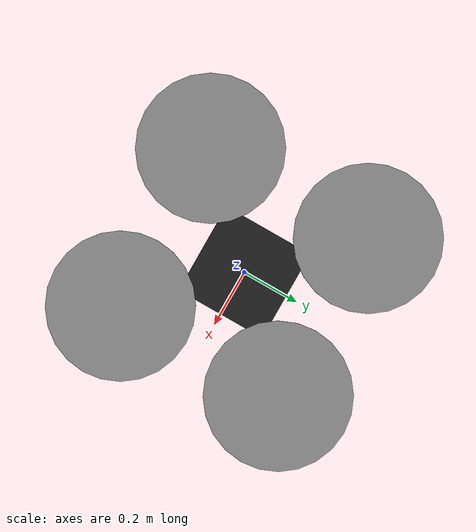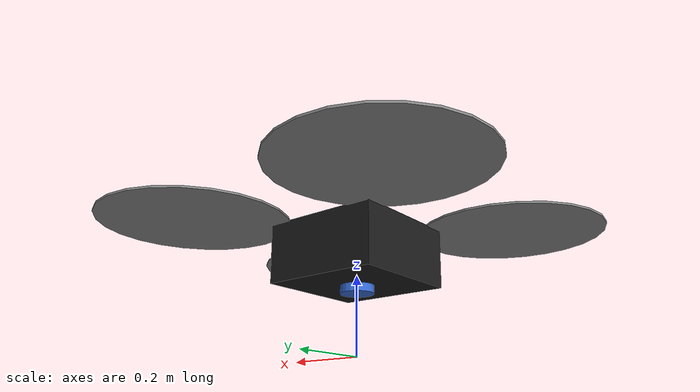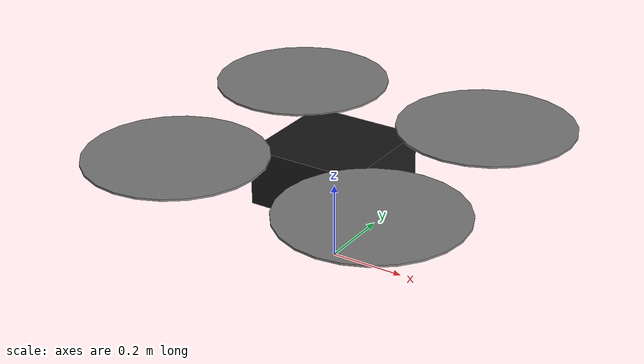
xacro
<?xml version="1.0"?>
<robot name="dragunfly" xmlns:xacro="http://www.ros.org/wiki/xacro">

  <!-- sim:=true  -> Gazebo-ready model (dynamics + sensors + ArduPilot SITL)
       sim:=false -> bare TF tree for the real aircraft -->
  <xacro:arg name="sim" default="false"/>
  <xacro:property name="sim" value="$(arg sim)"/>

  <!-- PARAMETERS — the only block to edit for a new Dragunfly variant       -->

  <!-- ==== Airframe geometry ==== -->
  <!-- Motor arm length: centre of base_link to a single rotor axis, metres.
       For a quad-X this is the motor-to-motor DIAGONAL / 2. -->
  <xacro:property name="prop_diameter_in" value="18.5"/>
  <xacro:property name="prop_radius"  value="${prop_diameter_in * 0.0254 / 2.0}"/>

  <xacro:property name="arm_length"   value="0.400"/>

  <!-- !! body_x/y are placeholders. An 800 mm-diagonal airframe almost certainly
       !! has a larger centre section than 0.30 m. Affects the inertia box
       !! approximation and the collision hull. -->
  <xacro:property name="body_x"       value="0.30"/>
  <xacro:property name="body_y"       value="0.30"/>
  <xacro:property name="body_z"       value="0.15"/>

  <xacro:property name="landing_gear_h" value="0.25"/>

  <xacro:property name="all_up_mass"  value="7.0"/>
  <xacro:property name="rotor_mass"   value="0.065"/>  <!-- 18.5in CF prop ~65 g -->
  <xacro:property name="body_mass"
                  value="${all_up_mass - lidar_mass - 4*rotor_mass}"/>

  <xacro:property name="body_ixx"
                  value="${body_mass*(body_y*body_y + body_z*body_z)/12.0}"/>
  <xacro:property name="body_iyy"
                  value="${body_mass*(body_x*body_x + body_z*body_z)/12.0}"/>
  <xacro:property name="body_izz"
                  value="${body_mass*(body_x*body_x + body_y*body_y)/12.0}"/>

  <xacro:property name="gravity"          value="9.81"/>
  <xacro:property name="thrust_to_weight" value="2.0"/>
  <xacro:property name="max_rot_velocity" value="520.0"/>
  <xacro:property name="motor_constant"
                  value="${thrust_to_weight * all_up_mass * gravity / 4.0
                           / (max_rot_velocity * max_rot_velocity)}"/>
  <xacro:property name="moment_arm_ratio" value="0.063"/>
  <xacro:property name="moment_constant"
                  value="${moment_arm_ratio * 2.0 * prop_radius}"/>

  <!-- Spin-up/down time constants. Large props carry far more rotational
       inertia than the 10 in Iris defaults (0.0125 / 0.025 s) assume. -->
  <xacro:property name="time_constant_up"   value="0.05"/>
  <xacro:property name="time_constant_down" value="0.08"/>

  <!-- ==== Ouster OS1-64 mounting (base_link -> os_sensor) ====
       Dragunfly baseline: inverted, 60 mm below the FCU, connector forward. -->
  <xacro:property name="lidar_xyz"    value="0.0 0.0 -0.060"/>
  <xacro:property name="lidar_rpy"    value="0 ${pi} 0"/>
  <xacro:property name="lidar_mass"   value="0.43"/>      <!-- OS1-64 = 430 g -->
  <xacro:property name="lidar_radius" value="0.0425"/>    <!-- 85 mm dia -->
  <xacro:property name="lidar_height" value="0.0710"/>

  <xacro:property name="os_lidar_xyz" value="0 0 0.03618"/>
  <xacro:property name="os_lidar_rpy" value="0 0 ${pi}"/>
  <xacro:property name="os_imu_xyz"   value="0.006253 -0.011775 0.007645"/>
  <xacro:property name="os_imu_rpy"   value="0 0 0"/>

  <!-- ==== LiDAR simulation (ignored when sim:=false) ====
       Matches the real driver's '1024x10' lidar_mode and 0.3-120 m range so the
       simulated cloud has the same shape as the hardware one. -->
  <xacro:property name="lidar_hz"          value="10"/>
  <xacro:property name="lidar_h_samples"   value="1024"/>
  <xacro:property name="lidar_v_samples"   value="64"/>
  <xacro:property name="lidar_v_min_deg"   value="-16.6"/>  <!-- OS1-64: 33.2 deg FoV -->
  <xacro:property name="lidar_v_max_deg"   value="16.6"/>
  <xacro:property name="lidar_min_range"   value="0.3"/>
  <xacro:property name="lidar_max_range"   value="120.0"/>
  <xacro:property name="lidar_noise_std"   value="0.015"/>  <!-- OS1 ~1.5-3 cm 1-sigma -->

  <!-- MATERIALS                                                            -->
  <material name="black"><color rgba="0.1 0.1 0.1 1.0"/></material>
  <material name="blue"><color rgba="0.2 0.4 0.8 1.0"/></material>
  <material name="red"><color rgba="0.8 0.2 0.2 1.0"/></material>
  <material name="grey"><color rgba="0.5 0.5 0.5 1.0"/></material>

  <!-- MACROS                                                               -->

  <!-- Solid-box inertia tensor -->
  <xacro:macro name="box_inertia" params="m x y z">
    <inertial>
      <origin xyz="0 0 0" rpy="0 0 0"/>
      <mass value="${m}"/>
      <inertia ixx="${m*(y*y+z*z)/12.0}" ixy="0.0" ixz="0.0"
               iyy="${m*(x*x+z*z)/12.0}" iyz="0.0"
               izz="${m*(x*x+y*y)/12.0}"/>
    </inertial>
  </xacro:macro>

  <xacro:macro name="frame_inertia">
    <xacro:if value="${sim}">
      <inertial>
        <origin xyz="0 0 0" rpy="0 0 0"/>
        <mass value="1e-6"/>
        <inertia ixx="1e-9" ixy="0.0" ixz="0.0" iyy="1e-9" iyz="0.0" izz="1e-9"/>
      </inertial>
    </xacro:if>
  </xacro:macro>

  <!-- Solid-cylinder inertia tensor (z = symmetry axis) -->
  <xacro:macro name="cylinder_inertia" params="m r h">
    <inertial>
      <origin xyz="0 0 0" rpy="0 0 0"/>
      <mass value="${m}"/>
      <inertia ixx="${m*(3*r*r+h*h)/12.0}" ixy="0.0" ixz="0.0"
               iyy="${m*(3*r*r+h*h)/12.0}" iyz="0.0"
               izz="${m*r*r/2.0}"/>
    </inertial>
  </xacro:macro>

  <xacro:macro name="ap_control" params="channel rotor dir">
    <control channel="${channel}">
      <jointName>${rotor}_joint</jointName>
      <useForce>1</useForce>
      <multiplier>${dir * max_rot_velocity}</multiplier>
      <offset>0</offset>
      <servo_min>1100</servo_min>
      <servo_max>1900</servo_max>
      <type>VELOCITY</type>
      <p_gain>0.20</p_gain>
      <i_gain>0</i_gain>
      <d_gain>0</d_gain>
      <cmd_max>2.5</cmd_max>
      <cmd_min>-2.5</cmd_min>
    </control>
  </xacro:macro>

  <xacro:macro name="rotor" params="name channel x y dir">
    <link name="${name}">
      <!-- Visual is present in BOTH modes on purpose: a recognisable quad
           silhouette in RViz/Foxglove is the fastest way to eyeball a wrong
           LiDAR mounting rotation against the airframe. -->
      <visual>
        <origin xyz="0 0 0" rpy="0 0 0"/>
        <geometry><cylinder radius="${prop_radius}" length="0.005"/></geometry>
        <material name="grey"/>
      </visual>
      <xacro:if value="${sim}">
        <xacro:cylinder_inertia m="${rotor_mass}" r="${prop_radius}" h="0.005"/>
      </xacro:if>
    </link>

    <joint name="${name}_joint" type="${'continuous' if sim else 'fixed'}">
      <parent link="base_link"/>
      <child  link="${name}"/>
      <origin xyz="${x} ${y} ${body_z/2.0}" rpy="0 0 0"/>
      <axis xyz="0 0 1"/>
      <xacro:if value="${sim}">
        <limit effort="100.0" velocity="2000.0"/>
        <dynamics damping="0.0" friction="0.0"/>
      </xacro:if>
    </joint>

    <xacro:if value="${sim}">
      <gazebo>
        <plugin filename="gz-sim-multicopter-motor-model-system"
                name="gz::sim::systems::MulticopterMotorModel">
          <robotNamespace>dragunfly</robotNamespace>
          <jointName>${name}_joint</jointName>
          <linkName>${name}</linkName>
          <turningDirection>${'ccw' if dir == 1 else 'cw'}</turningDirection>
          <timeConstantUp>${time_constant_up}</timeConstantUp>
          <timeConstantDown>${time_constant_down}</timeConstantDown>
          <maxRotVelocity>${max_rot_velocity}</maxRotVelocity>
          <motorConstant>${motor_constant}</motorConstant>
          <momentConstant>${moment_constant}</momentConstant>
          <commandSubTopic>command/motor_speed</commandSubTopic>
          <actuator_number>${channel}</actuator_number>
          <rotorDragCoefficient>8.06428e-05</rotorDragCoefficient>
          <rollingMomentCoefficient>1e-06</rollingMomentCoefficient>
          <rotorVelocitySlowdownSim>10</rotorVelocitySlowdownSim>
          <motorType>velocity</motorType>
        </plugin>
      </gazebo>
    </xacro:if>
  </xacro:macro>

  <!-- LINKS                                                                -->

  <xacro:unless value="${sim}">
    <link name="base_footprint"/>
    <joint name="base_footprint_to_base_link" type="fixed">
      <parent link="base_footprint"/>
      <child  link="base_link"/>
      <origin xyz="0 0 ${landing_gear_h}" rpy="0 0 0"/>
    </joint>
  </xacro:unless>

  <!-- Body origin. Coincident with the CubeOrange FCU on this airframe. -->
  <link name="base_link">
    <visual>
      <origin xyz="0 0 0" rpy="0 0 0"/>
      <geometry><box size="${body_x} ${body_y} ${body_z}"/></geometry>
      <material name="black"/>
    </visual>
    <xacro:if value="${sim}">
      <collision>
        <origin xyz="0 0 0" rpy="0 0 0"/>
        <geometry><box size="${body_x} ${body_y} ${body_z}"/></geometry>
      </collision>
      <!-- Uses the explicit body_i** properties so measured values can be
           dropped in without touching the box approximation macro. -->
      <inertial>
        <origin xyz="0 0 0" rpy="0 0 0"/>
        <mass value="${body_mass}"/>
        <inertia ixx="${body_ixx}" ixy="0.0" ixz="0.0"
                 iyy="${body_iyy}" iyz="0.0"
                 izz="${body_izz}"/>
      </inertial>
    </xacro:if>
  </link>

  <!-- FCU frame, kept as a named frame even though it is coincident with
       base_link, so MAVROS/vision-bridge debugging has something to echo. -->
  <link name="fcu">
    <xacro:frame_inertia/>
  </link>
  <joint name="fcu_joint" type="fixed">
    <parent link="base_link"/>
    <child  link="fcu"/>
    <origin xyz="0 0 0" rpy="0 0 0"/>
  </joint>

  <!-- Ouster OS1-64 housing -->
  <link name="os_sensor">
    <visual>
      <origin xyz="0 0 0" rpy="0 0 0"/>
      <geometry><cylinder radius="${lidar_radius}" length="${lidar_height}"/></geometry>
      <material name="blue"/>
    </visual>
    <xacro:if value="${sim}">
      <collision>
        <origin xyz="0 0 0" rpy="0 0 0"/>
        <geometry><cylinder radius="${lidar_radius}" length="${lidar_height}"/></geometry>
      </collision>
      <xacro:cylinder_inertia m="${lidar_mass}" r="${lidar_radius}" h="${lidar_height}"/>
    </xacro:if>
  </link>
  <joint name="base_link_to_os_sensor" type="fixed">
    <parent link="base_link"/>
    <child  link="os_sensor"/>
    <origin xyz="${lidar_xyz}" rpy="${lidar_rpy}"/>
  </joint>

  <!-- LiDAR optical origin. Point clouds are published in this frame. -->
  <link name="os_lidar">
    <xacro:frame_inertia/>
  </link>
  <joint name="os_sensor_to_os_lidar" type="fixed">
    <parent link="os_sensor"/>
    <child  link="os_lidar"/>
    <origin xyz="${os_lidar_xyz}" rpy="${os_lidar_rpy}"/>
  </joint>

  <!-- Ouster integrated IMU (ICM-20948). This is the IMU FAST-LIO2 consumes. -->
  <link name="os_imu">
    <xacro:frame_inertia/>
  </link>
  <joint name="os_sensor_to_os_imu" type="fixed">
    <parent link="os_sensor"/>
    <child  link="os_imu"/>
    <origin xyz="${os_imu_xyz}" rpy="${os_imu_rpy}"/>
  </joint>

  <!-- Rotors: quad-X. Arms at 45 deg, so each offset is arm_length/sqrt(2). -->
  <xacro:property name="d" value="${arm_length/sqrt(2)}"/>
  <xacro:rotor name="rotor_0" channel="0" x="${ d}" y="${-d}" dir="1"/>   <!-- front-right CCW -->
  <xacro:rotor name="rotor_1" channel="1" x="${-d}" y="${ d}" dir="1"/>   <!-- rear-left   CCW -->
  <xacro:rotor name="rotor_2" channel="2" x="${ d}" y="${ d}" dir="-1"/>  <!-- front-left  CW  -->
  <xacro:rotor name="rotor_3" channel="3" x="${-d}" y="${-d}" dir="-1"/>  <!-- rear-right  CW  -->

  <!-- SIMULATION-ONLY: sensors + ArduPilot SITL                            -->
  <xacro:if value="${sim}">

    <gazebo reference="os_lidar">
      <sensor name="os_lidar_sensor" type="gpu_lidar">
        <topic>/dragunfly/points</topic>
        <gz_frame_id>os_lidar</gz_frame_id>
        <update_rate>${lidar_hz}</update_rate>
        <always_on>1</always_on>
        <visualize>true</visualize>
        <lidar>
          <scan>
            <horizontal>
              <samples>${lidar_h_samples}</samples>
              <resolution>1</resolution>
              <min_angle>${-pi}</min_angle>
              <max_angle>${pi}</max_angle>
            </horizontal>
            <vertical>
              <samples>${lidar_v_samples}</samples>
              <resolution>1</resolution>
              <min_angle>${radians(lidar_v_min_deg)}</min_angle>
              <max_angle>${radians(lidar_v_max_deg)}</max_angle>
            </vertical>
          </scan>
          <range>
            <min>${lidar_min_range}</min>
            <max>${lidar_max_range}</max>
            <resolution>0.001</resolution>
          </range>
          <noise>
            <type>gaussian</type>
            <mean>0.0</mean>
            <stddev>${lidar_noise_std}</stddev>
          </noise>
        </lidar>
      </sensor>
    </gazebo>

    <!-- Simulated Ouster IMU, on os_imu. Noise densities are ICM-20948 datasheet
         figures, chosen so FAST-LIO2's IMU noise parameters do not need a
         separate sim-vs-real tuning pass. -->
    <gazebo reference="os_imu">
      <sensor name="os_imu_sensor" type="imu">
        <topic>/dragunfly/imu</topic>
        <gz_frame_id>os_imu</gz_frame_id>
        <update_rate>100</update_rate>
        <always_on>1</always_on>
        <imu>
          <angular_velocity>
            <x><noise type="gaussian"><mean>0.0</mean><stddev>0.00027</stddev>
               <bias_mean>0.0000075</bias_mean><bias_stddev>0.0000008</bias_stddev></noise></x>
            <y><noise type="gaussian"><mean>0.0</mean><stddev>0.00027</stddev>
               <bias_mean>0.0000075</bias_mean><bias_stddev>0.0000008</bias_stddev></noise></y>
            <z><noise type="gaussian"><mean>0.0</mean><stddev>0.00027</stddev>
               <bias_mean>0.0000075</bias_mean><bias_stddev>0.0000008</bias_stddev></noise></z>
          </angular_velocity>
          <linear_acceleration>
            <x><noise type="gaussian"><mean>0.0</mean><stddev>0.0023</stddev>
               <bias_mean>0.0001</bias_mean><bias_stddev>0.000015</bias_stddev></noise></x>
            <y><noise type="gaussian"><mean>0.0</mean><stddev>0.0023</stddev>
               <bias_mean>0.0001</bias_mean><bias_stddev>0.000015</bias_stddev></noise></y>
            <z><noise type="gaussian"><mean>0.0</mean><stddev>0.0023</stddev>
               <bias_mean>0.0001</bias_mean><bias_stddev>0.000015</bias_stddev></noise></z>
          </linear_acceleration>
        </imu>
      </sensor>
    </gazebo>

    <gazebo reference="base_link">
      <sensor name="fcu_imu_sensor" type="imu">
        <topic>/dragunfly/fcu_imu</topic>
        <gz_frame_id>base_link</gz_frame_id>
        <update_rate>1000</update_rate>
        <always_on>1</always_on>
      </sensor>
    </gazebo>

    <gazebo>
      <!-- Required for the MulticopterMotorModel plugins above to receive commands -->
      <plugin filename="gz-sim-multicopter-control-system"
              name="gz::sim::systems::MulticopterVelocityControl">
        <robotNamespace>dragunfly</robotNamespace>
        <commandSubTopic>cmd_vel</commandSubTopic>
        <enableSubTopic>enable</enableSubTopic>
      </plugin>

      <plugin name="ArduPilotPlugin" filename="ArduPilotPlugin">
        <fdm_addr>127.0.0.1</fdm_addr>
        <fdm_port_in>9002</fdm_port_in>
        <connectionTimeoutMaxCount>5</connectionTimeoutMaxCount>
        <lock_step>1</lock_step>
        <have_32_channels>0</have_32_channels>
        <gazeboXYZToNED>0 0 0 ${pi} 0 0</gazeboXYZToNED>
        <modelXYZToAirplaneXForwardZDown>0 0 0 ${pi} 0 0</modelXYZToAirplaneXForwardZDown>
        <imuName>fcu_imu_sensor</imuName>

        <xacro:ap_control channel="0" rotor="rotor_0" dir="1"/>
        <xacro:ap_control channel="1" rotor="rotor_1" dir="1"/>
        <xacro:ap_control channel="2" rotor="rotor_2" dir="-1"/>
        <xacro:ap_control channel="3" rotor="rotor_3" dir="-1"/>
      </plugin>
    </gazebo>

  </xacro:if>

</robot>
